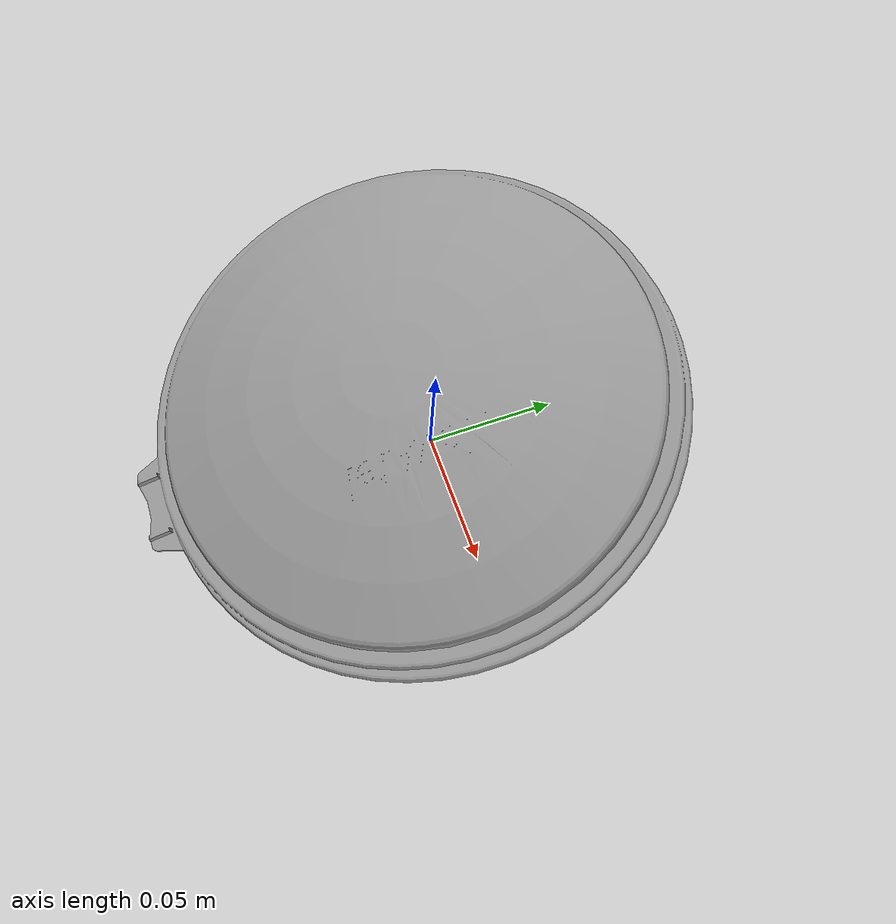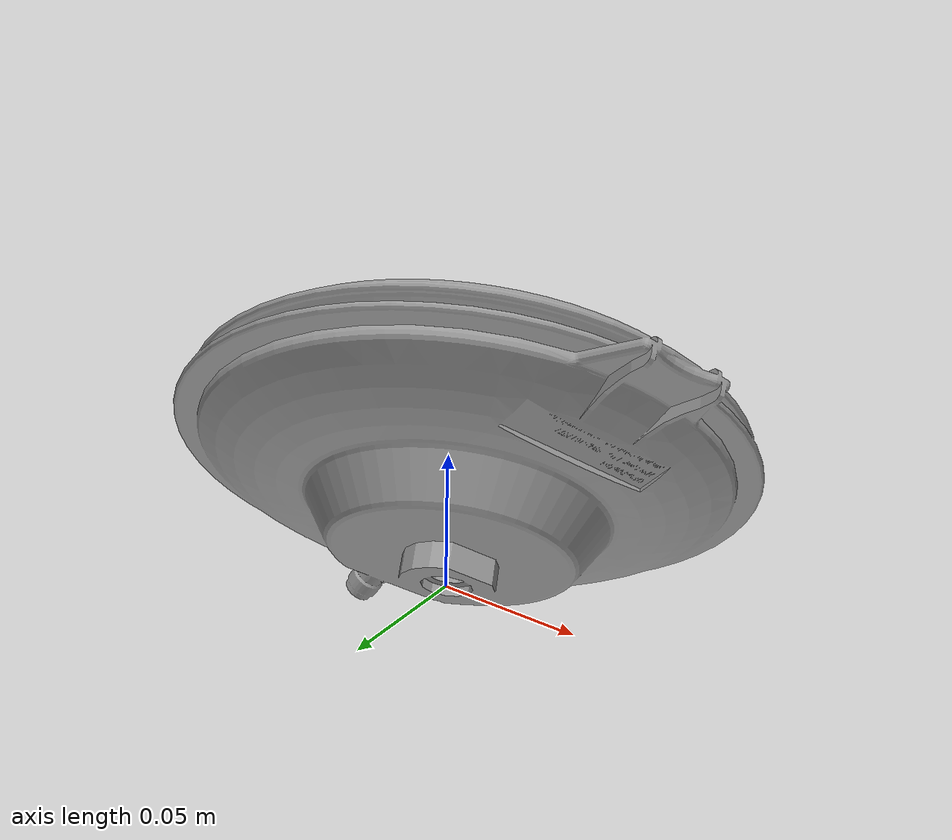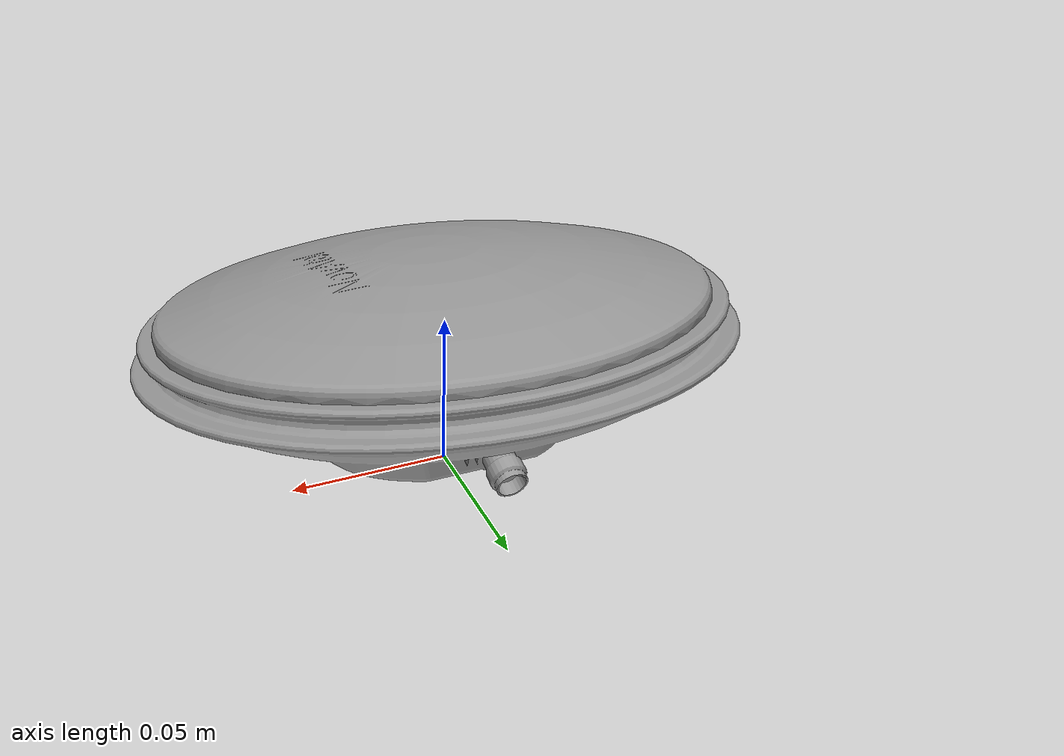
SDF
<?xml version='1.0'?>
<sdf version='1.6'>
  <model name='grudsby_gps'>
    <link name='base_link_sim'>
      <pose frame=''>0 0 0 0 0 0</pose>

      <inertial>
        <mass>0.002</mass>
        <inertia>
          <ixx>0</ixx>
          <ixy>0</ixy>
          <ixz>-0</ixz>
          <iyy>0</iyy>
          <iyz>0</iyz>
          <izz>0</izz>
        </inertia>
        <pose frame=''>0 0 0 0 -0 0</pose>
      </inertial>

      <visual name='visual'>
        <pose frame=''>0 0 0 0 -0 1.5707</pose>
        <geometry>
          <mesh>
            <uri>model://grudsby_gps/meshes/grudsby_gps.STL</uri>
          </mesh>
        </geometry>
        <material>
          <lighting>1</lighting>
          <script>
            <uri>file://media/materials/scripts/gazebo.material</uri>
            <name>Gazebo/Grey</name>
          </script>
          <shader type='vertex'>
            <normal_map>__default__</normal_map>
          </shader>
        </material>
        <cast_shadows>1</cast_shadows>
        <transparency>0</transparency>
      </visual>

      <collision name='collision'>
        <max_contacts>10</max_contacts>
        <pose frame=''>0 0 0 0 -0 1.5707</pose>
        <geometry>
          <mesh>
            <uri>model://grudsby_gps/meshes/grudsby_gps.STL</uri>
          </mesh>
        </geometry>
      </collision>
    </link>

    <plugin name="gps_plugin" filename="libhector_gazebo_ros_gps.so">
      <alwayson>true</alwayson>
      <updateRate>5.0</updateRate>
      <bodyName>base_link_sim</bodyName>
      <topicName>/fix_sim</topicName>
      <velocityTopicName>/fix_velocity</velocityTopicName>
      <drift>0.316227766 0.316227766 0.5</drift>
      <gaussianNoise>0.01 0.01 0.01</gaussianNoise>
      <velocityDrift>0 0 0</velocityDrift>
      <velocityGaussianNoise>0.001 0.001 0.001</velocityGaussianNoise>
      <status>1</status>
      <referenceLatitude>40.444549</referenceLatitude>
      <referenceLongitude>-79.940793</referenceLongitude>
    </plugin>

    <static>0</static>
    <allow_auto_disable>1</allow_auto_disable>
  </model>
</sdf>
